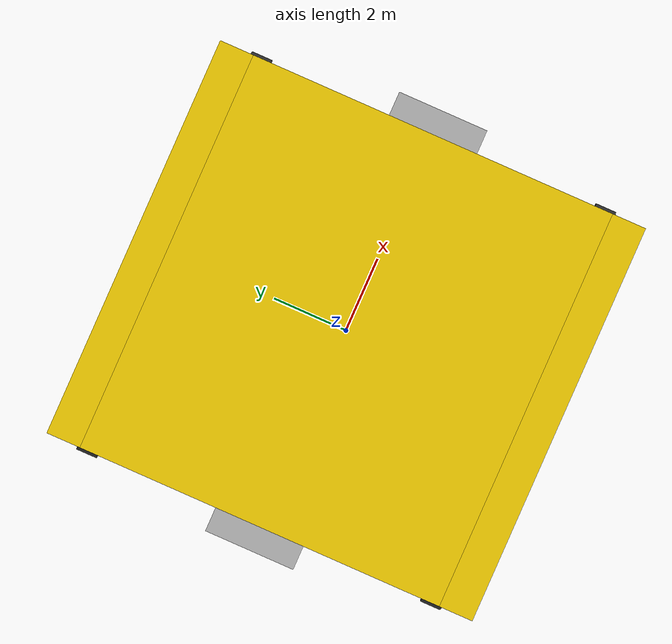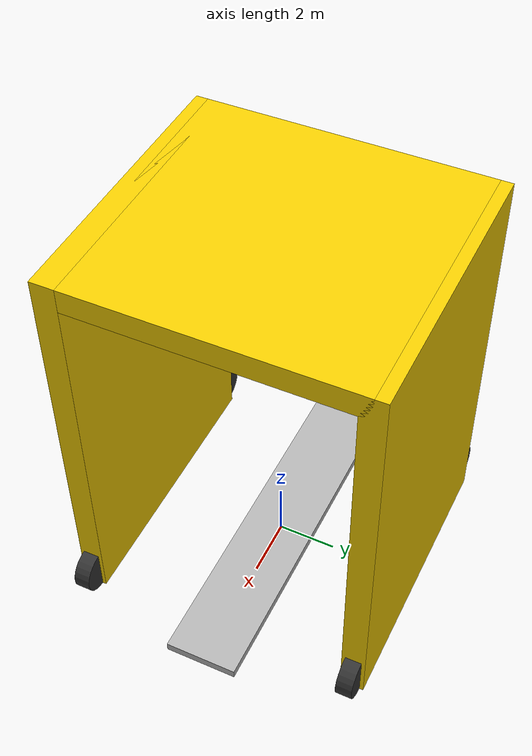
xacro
<?xml version="1.0"?>
<robot name="straddle_carrier" xmlns:xacro="http://www.ros.org/wiki/xacro">

  <!-- Vehicle dimensions (interfaces.md §1) -->
  <xacro:property name="portal_outer_width"  value="9.5"/>    <!-- m, centre-to-centre outer tyre pairs -->
  <xacro:property name="portal_inner_width"  value="6.0"/>    <!-- m, clear span over container row -->
  <xacro:property name="wheelbase"           value="9.5"/>    <!-- m, front axle to rear axle -->
  <xacro:property name="portal_height"       value="13.5"/>   <!-- m, top of structural frame -->
  <xacro:property name="wheel_radius"        value="0.75"/>   <!-- m, 18.00R25 industrial tyre -->
  <xacro:property name="wheel_width"         value="0.55"/>

  <!-- Spreader dimensions (interfaces.md §2) -->
  <xacro:property name="spreader_length"     value="12.192"/> <!-- m, 40ft ISO -->
  <xacro:property name="spreader_width"      value="2.438"/>  <!-- m, 40ft ISO -->
  <xacro:property name="spreader_thickness"  value="0.3"/>
  <xacro:property name="spreader_lift_max"   value="9.0"/>    <!-- m, joint upper limit -->

  <!-- Portal frame cross-section (structural leg / top beam depth) -->
  <xacro:property name="frame_thickness"     value="0.8"/>

  <!-- Masses (model_agent.md §3) -->
  <xacro:property name="mass_portal"         value="38000"/>  <!-- kg, base_link -->
  <xacro:property name="mass_wheel"          value="600"/>    <!-- kg, each wheel -->
  <xacro:property name="mass_spreader"       value="3000"/>   <!-- kg, spreader_link -->

  <!-- ══════════════════════════════════════════════════════════════════════
       Inertia helper macros
       ══════════════════════════════════════════════════════════════════════ -->

  <!-- Solid box: x=length(X) y=width(Y) z=height(Z) -->
  <xacro:macro name="box_inertia" params="m x y z">
    <inertial>
      <mass value="${m}"/>
      <inertia
        ixx="${m*(y*y + z*z)/12}" ixy="0" ixz="0"
        iyy="${m*(x*x + z*z)/12}" iyz="0"
        izz="${m*(x*x + y*y)/12}"/>
    </inertial>
  </xacro:macro>

  <xacro:macro name="wheel_inertia" params="m r h">
    <inertial>
      <mass value="${m}"/>
      <inertia
        ixx="${m*(3*r*r + h*h)/12}" ixy="0" ixz="0"
        iyy="${m*r*r/2}"            iyz="0"
        izz="${m*(3*r*r + h*h)/12}"/>
    </inertial>
  </xacro:macro>

  <link name="base_footprint"/>

  <!-- Fixed lift to wheel-centre height (interfaces.md §7) -->
  <joint name="base_footprint_joint" type="fixed">
    <parent link="base_footprint"/>
    <child  link="base_link"/>
    <origin xyz="0 0 ${wheel_radius}" rpy="0 0 0"/>
  </joint>

  <link name="base_link">

    <!-- Inertia: bounding box approximation of portal frame mass distribution -->
    <xacro:box_inertia m="${mass_portal}"
      x="${wheelbase + frame_thickness}"
      y="${portal_outer_width}"
      z="${portal_height}"/>

    <!-- Left leg (positive Y side, ROS convention: Y = left) -->
    <visual>
      <origin xyz="0 ${portal_outer_width/2} ${portal_height/2 - wheel_radius}" rpy="0 0 0"/>
      <geometry>
        <box size="${wheelbase} ${frame_thickness} ${portal_height}"/>
      </geometry>
      <material name="yellow"><color rgba="0.95 0.80 0.0 1"/></material>
    </visual>
    <collision>
      <origin xyz="0 ${portal_outer_width/2} ${portal_height/2 - wheel_radius}" rpy="0 0 0"/>
      <geometry>
        <box size="${wheelbase} ${frame_thickness} ${portal_height}"/>
      </geometry>
    </collision>

    <!-- Right leg (negative Y side) -->
    <visual>
      <origin xyz="0 ${-portal_outer_width/2} ${portal_height/2 - wheel_radius}" rpy="0 0 0"/>
      <geometry>
        <box size="${wheelbase} ${frame_thickness} ${portal_height}"/>
      </geometry>
      <material name="yellow"/>
    </visual>
    <collision>
      <origin xyz="0 ${-portal_outer_width/2} ${portal_height/2 - wheel_radius}" rpy="0 0 0"/>
      <geometry>
        <box size="${wheelbase} ${frame_thickness} ${portal_height}"/>
      </geometry>
    </collision>

    <!-- Top beam (spans full outer width) -->
    <visual>
      <origin xyz="0 0 ${portal_height - wheel_radius - frame_thickness/2}" rpy="0 0 0"/>
      <geometry>
        <box size="${wheelbase} ${portal_outer_width} ${frame_thickness}"/>
      </geometry>
      <material name="yellow"/>
    </visual>
    <collision>
      <origin xyz="0 0 ${portal_height - wheel_radius - frame_thickness/2}" rpy="0 0 0"/>
      <geometry>
        <box size="${wheelbase} ${portal_outer_width} ${frame_thickness}"/>
      </geometry>
    </collision>

  </link>

  <xacro:macro name="wheel" params="prefix x_sign y_sign">

    <link name="${prefix}_wheel_link">
      <xacro:wheel_inertia m="${mass_wheel}" r="${wheel_radius}" h="${wheel_width}"/>
      <visual>
        <origin xyz="0 0 0" rpy="${pi/2} 0 0"/>
        <geometry>
          <cylinder radius="${wheel_radius}" length="${wheel_width}"/>
        </geometry>
        <material name="dark_grey"><color rgba="0.2 0.2 0.2 1"/></material>
      </visual>
      <collision>
        <origin xyz="0 0 0" rpy="${pi/2} 0 0"/>
        <geometry>
          <cylinder radius="${wheel_radius}" length="${wheel_width}"/>
        </geometry>
      </collision>
    </link>

    <joint name="${prefix}_wheel_joint" type="continuous">
      <parent link="base_link"/>
      <child  link="${prefix}_wheel_link"/>
      <origin
        xyz="${x_sign * wheelbase/2} ${y_sign * portal_outer_width/2} 0"
        rpy="0 0 0"/>
      <axis xyz="0 1 0"/>
    </joint>

    <!-- Gazebo contact properties for this wheel -->
    <gazebo reference="${prefix}_wheel_link">
      <mu1>1.0</mu1>
      <mu2>1.0</mu2>
      <kp>1e6</kp>
      <kd>100</kd>
    </gazebo>

  </xacro:macro>

  <!-- Instantiate the four wheels (joint names match interfaces.md §4 exactly) -->
  <xacro:wheel prefix="front_left"  x_sign="1"  y_sign="1"/>
  <xacro:wheel prefix="front_right" x_sign="1"  y_sign="-1"/>
  <xacro:wheel prefix="rear_left"   x_sign="-1" y_sign="1"/>
  <xacro:wheel prefix="rear_right"  x_sign="-1" y_sign="-1"/>

  <link name="spreader_link">
    <xacro:box_inertia m="${mass_spreader}"
      x="${spreader_length}"
      y="${spreader_width}"
      z="${spreader_thickness}"/>
    <visual>
      <origin xyz="0 0 0" rpy="0 0 0"/>
      <geometry>
        <box size="${spreader_length} ${spreader_width} ${spreader_thickness}"/>
      </geometry>
      <material name="light_grey"><color rgba="0.7 0.7 0.7 1"/></material>
    </visual>
    <collision>
      <origin xyz="0 0 0" rpy="0 0 0"/>
      <geometry>
        <box size="${spreader_length} ${spreader_width} ${spreader_thickness}"/>
      </geometry>
    </collision>
  </link>

  <joint name="spreader_joint" type="prismatic">
    <parent link="base_link"/>
    <child  link="spreader_link"/>
    <origin xyz="0 0 ${spreader_thickness/2 - wheel_radius}" rpy="0 0 0"/>
    <axis xyz="0 0 1"/>
    <limit lower="0" upper="${spreader_lift_max}"
           effort="500000" velocity="0.2"/>
  </joint>

  <gazebo>

    <!-- ── 1. DiffDrive — wheel propulsion + /odom ────────────────────── -->
    <plugin filename="gz-sim-diff-drive-system"
            name="gz::sim::systems::DiffDrive">
      <left_joint>front_left_wheel_joint</left_joint>
      <left_joint>rear_left_wheel_joint</left_joint>
      <right_joint>front_right_wheel_joint</right_joint>
      <right_joint>rear_right_wheel_joint</right_joint>
      <wheel_separation>${portal_outer_width}</wheel_separation>
      <wheel_radius>${wheel_radius}</wheel_radius>
      <odom_publish_frequency>50</odom_publish_frequency>
      <topic>cmd_vel</topic>
      <odom_topic>odom</odom_topic>
      <tf_topic>tf</tf_topic>
      <frame_id>odom</frame_id>
      <child_frame_id>base_footprint</child_frame_id>
      <max_linear_acceleration>1.0</max_linear_acceleration>
    </plugin>

    <!-- ── 2. JointPositionController — spreader height /spreader/cmd ─── -->
    <plugin filename="gz-sim-joint-position-controller-system"
            name="gz::sim::systems::JointPositionController">
      <joint_name>spreader_joint</joint_name>
      <topic>spreader/cmd</topic>
      <p_gain>10000</p_gain>
      <i_gain>0</i_gain>
      <d_gain>100</d_gain>
      <i_max>1</i_max>
      <i_min>-1</i_min>
      <cmd_max>500000</cmd_max>
      <cmd_min>-500000</cmd_min>
    </plugin>

    <!-- ── 3. JointStatePublisher — /joint_states ─────────────────────── -->
    <plugin filename="gz-sim-joint-state-publisher-system"
            name="gz::sim::systems::JointStatePublisher">
      <topic>joint_states</topic>
    </plugin>

  </gazebo>

</robot>
